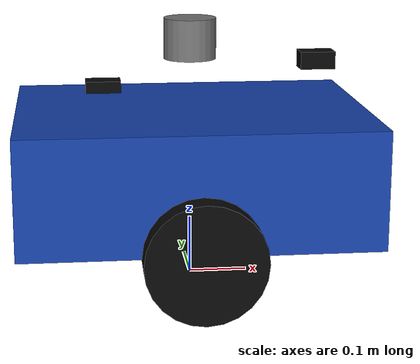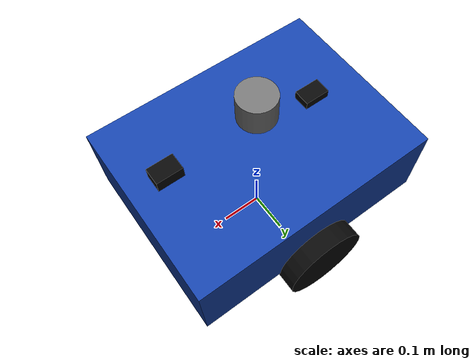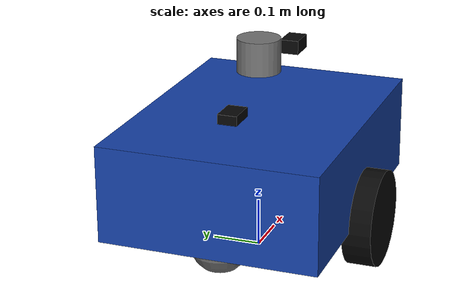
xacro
<?xml version="1.0"?>
<robot xmlns:xacro="http://www.ros.org/wiki/xacro" name="gazebo_diffbot">
  <xacro:arg name="enable_camera" default="true"/>
  <xacro:arg name="enable_lidar" default="false"/>
  <xacro:property name="base_length" value="0.60"/>
  <xacro:property name="base_width" value="0.45"/>
  <xacro:property name="base_height" value="0.20"/>
  <xacro:property name="wheel_radius" value="0.10"/>
  <xacro:property name="wheel_width" value="0.06"/>
  <xacro:property name="wheel_separation" value="0.48"/>
  <xacro:property name="sensor_mount_height" value="0.42"/>

  <material name="blue">
    <color rgba="0.08 0.25 0.65 1.0"/>
  </material>
  <material name="black">
    <color rgba="0.03 0.03 0.03 1.0"/>
  </material>
  <material name="gray">
    <color rgba="0.45 0.45 0.45 1.0"/>
  </material>

  <link name="fault_base_link">
    <visual>
      <origin xyz="0 0 ${wheel_radius + base_height / 2}"/>
      <geometry><box size="${base_length} ${base_width} ${base_height}"/></geometry>
      <material name="blue"/>
    </visual>
    <collision>
      <origin xyz="0 0 ${wheel_radius + base_height / 2}"/>
      <geometry><box size="${base_length} ${base_width} ${base_height}"/></geometry>
    </collision>
    <inertial>
      <origin xyz="0 0 ${wheel_radius + base_height / 2}"/>
      <mass value="12.0"/>
      <inertia ixx="0.25" ixy="0" ixz="0" iyy="0.40" iyz="0" izz="0.55"/>
    </inertial>
  </link>

  <!-- Gazebo approximation of the Unitree Mid-360 mounting point. -->
  <link name="mid360_link">
    <visual>
      <origin xyz="0 0 0"/>
      <geometry><cylinder radius="0.045" length="0.07"/></geometry>
      <material name="gray"/>
    </visual>
    <collision>
      <origin xyz="0 0 0"/>
      <geometry><cylinder radius="0.045" length="0.07"/></geometry>
    </collision>
    <inertial>
      <mass value="0.25"/>
      <inertia ixx="0.0001" ixy="0" ixz="0" iyy="0.0001" iyz="0" izz="0.0001"/>
    </inertial>
  </link>
  <joint name="mid360_joint" type="fixed">
    <parent link="fault_base_link"/>
    <child link="mid360_link"/>
    <origin xyz="0 0 ${sensor_mount_height}"/>
  </joint>

  <!-- RGB camera frame used by the later YOLO pipeline. -->
  <xacro:if value="$(arg enable_camera)">
  <link name="camera_link">
    <visual>
      <origin xyz="0 0 0"/>
      <geometry><box size="0.06 0.04 0.03"/></geometry>
      <material name="black"/>
    </visual>
  </link>
  <joint name="camera_joint" type="fixed">
    <parent link="fault_base_link"/>
    <child link="camera_link"/>
    <origin xyz="0.22 0 ${sensor_mount_height - 0.04}" rpy="0 0 0"/>
  </joint>
  </xacro:if>

  <xacro:macro name="wheel" params="name y">
    <link name="${name}_wheel_link">
      <visual>
        <origin rpy="1.57079632679 0 0"/>
        <geometry><cylinder radius="${wheel_radius}" length="${wheel_width}"/></geometry>
        <material name="black"/>
      </visual>
      <collision>
        <origin rpy="1.57079632679 0 0"/>
        <geometry><cylinder radius="${wheel_radius}" length="${wheel_width}"/></geometry>
      </collision>
      <inertial>
        <mass value="1.0"/>
        <inertia ixx="0.005" ixy="0" ixz="0" iyy="0.005" iyz="0" izz="0.005"/>
      </inertial>
    </link>
    <joint name="${name}_wheel_joint" type="continuous">
      <parent link="fault_base_link"/>
      <child link="${name}_wheel_link"/>
      <origin xyz="0 ${y} ${wheel_radius}"/>
      <axis xyz="0 1 0"/>
    </joint>
  </xacro:macro>

  <xacro:wheel name="left" y="${wheel_separation / 2}"/>
  <xacro:wheel name="right" y="-${wheel_separation / 2}"/>

  <link name="caster_link">
    <visual>
      <origin xyz="0 0 ${wheel_radius}"/>
      <geometry><sphere radius="0.06"/></geometry>
      <material name="gray"/>
    </visual>
    <collision>
      <origin xyz="0 0 ${wheel_radius}"/>
      <geometry><sphere radius="0.06"/></geometry>
    </collision>
    <inertial>
      <mass value="0.3"/>
      <inertia ixx="0.0004" ixy="0" ixz="0" iyy="0.0004" iyz="0" izz="0.0004"/>
    </inertial>
  </link>
  <joint name="caster_joint" type="fixed">
    <parent link="fault_base_link"/>
    <child link="caster_link"/>
    <origin xyz="-${base_length / 2 - 0.08} 0 0"/>
  </joint>

  <gazebo reference="fault_base_link">
    <material>Gazebo/Blue</material>
  </gazebo>
  <gazebo reference="left_wheel_link"><material>Gazebo/Black</material></gazebo>
  <gazebo reference="right_wheel_link"><material>Gazebo/Black</material></gazebo>

  <xacro:if value="$(arg enable_lidar)">
  <gazebo reference="mid360_link">
    <sensor name="mid360_lidar" type="ray">
      <always_on>true</always_on>
      <visualize>false</visualize>
      <update_rate>10.0</update_rate>
      <ray>
        <scan>
          <horizontal>
            <samples>720</samples>
            <resolution>1.0</resolution>
            <min_angle>-3.14159265359</min_angle>
            <max_angle>3.14159265359</max_angle>
          </horizontal>
          <vertical>
            <samples>32</samples>
            <resolution>1.0</resolution>
            <min_angle>-0.5235987756</min_angle>
            <max_angle>0.2617993878</max_angle>
          </vertical>
        </scan>
        <range>
          <min>0.10</min>
          <max>70.0</max>
          <resolution>0.01</resolution>
        </range>
      </ray>
      <plugin name="mid360_pointcloud" filename="libgazebo_ros_ray_sensor.so">
        <ros>
          <namespace>/</namespace>
          <remapping>~/out:=mid360/points</remapping>
        </ros>
        <output_type>sensor_msgs/PointCloud2</output_type>
      </plugin>
    </sensor>
  </gazebo>
  </xacro:if>

  <xacro:if value="$(arg enable_camera)">
  <gazebo reference="camera_link">
    <sensor name="depth_camera" type="camera">
      <always_on>true</always_on>
      <visualize>false</visualize>
      <update_rate>10.0</update_rate>
      <camera name="depth_camera_optical">
        <horizontal_fov>1.0472</horizontal_fov>
        <image>
          <width>320</width>
          <height>240</height>
          <format>R8G8B8</format>
        </image>
        <clip>
          <near>0.05</near>
          <far>20.0</far>
        </clip>
      </camera>
      <plugin name="depth_camera_ros" filename="libgazebo_ros_camera.so">
        <ros>
          <namespace>/camera</namespace>
          <remapping>image_raw:=color/image_raw</remapping>
          <remapping>camera_info:=color/camera_info</remapping>
        </ros>
        <camera_name>depth_camera</camera_name>
        <frame_name>camera_link</frame_name>
      </plugin>
    </sensor>
  </gazebo>
  </xacro:if>

  <gazebo>
    <plugin name="diff_drive" filename="libgazebo_ros_diff_drive.so">
      <ros>
        <namespace>/</namespace>
      </ros>
      <update_rate>50</update_rate>
      <left_joint>left_wheel_joint</left_joint>
      <right_joint>right_wheel_joint</right_joint>
      <wheel_separation>${wheel_separation}</wheel_separation>
      <wheel_diameter>${2 * wheel_radius}</wheel_diameter>
      <max_wheel_torque>20</max_wheel_torque>
      <max_wheel_acceleration>10</max_wheel_acceleration>
      <command_topic>cmd_vel</command_topic>
      <odometry_topic>odom</odometry_topic>
      <odometry_frame>odom</odometry_frame>
      <robot_base_frame>fault_base_link</robot_base_frame>
      <publish_odom>true</publish_odom>
      <publish_odom_tf>true</publish_odom_tf>
      <publish_wheel_tf>false</publish_wheel_tf>
      <publish_wheel_joint_state>true</publish_wheel_joint_state>
    </plugin>
  </gazebo>
    <link name="imu_link">
    <visual>
      <origin xyz="0 0 0"/>
      <geometry>
        <box size="0.06 0.04 0.02"/>
      </geometry>
      <material name="black"/>
    </visual>

    <collision>
      <origin xyz="0 0 0"/>
      <geometry>
        <box size="0.06 0.04 0.02"/>
      </geometry>
    </collision>

    <inertial>
      <origin xyz="0 0 0"/>
      <mass value="0.1"/>
      <inertia ixx="0.0001" ixy="0" ixz="0"
               iyy="0.0001" iyz="0" izz="0.0001"/>
    </inertial>
  </link>

  <joint name="imu_joint" type="fixed">
    <parent link="fault_base_link"/>
    <child link="imu_link"/>
    <origin xyz="-0.15 0 ${sensor_mount_height - 0.08}" rpy="0 0 0"/>
  </joint>

  <gazebo reference="imu_link">
    <sensor name="imu_sensor" type="imu">
      <always_on>true</always_on>
      <visualize>false</visualize>
      <update_rate>100.0</update_rate>

      <imu>
        <angular_velocity>
          <x>
            <noise type="gaussian">
              <mean>0.0</mean>
              <stddev>0.001</stddev>
            </noise>
          </x>
          <y>
            <noise type="gaussian">
              <mean>0.0</mean>
              <stddev>0.001</stddev>
            </noise>
          </y>
          <z>
            <noise type="gaussian">
              <mean>0.0</mean>
              <stddev>0.001</stddev>
            </noise>
          </z>
        </angular_velocity>

        <linear_acceleration>
          <x>
            <noise type="gaussian">
              <mean>0.0</mean>
              <stddev>0.01</stddev>
            </noise>
          </x>
          <y>
            <noise type="gaussian">
              <mean>0.0</mean>
              <stddev>0.01</stddev>
            </noise>
          </y>
          <z>
            <noise type="gaussian">
              <mean>0.0</mean>
              <stddev>0.01</stddev>
            </noise>
          </z>
        </linear_acceleration>
      </imu>

      <plugin name="imu_plugin"
              filename="libgazebo_ros_imu_sensor.so">
        <ros>
          <namespace>/</namespace>
          <remapping>~/out:=imu/data</remapping>
        </ros>
        <frame_name>imu_link</frame_name>
      </plugin>
    </sensor>
  </gazebo>
</robot>
